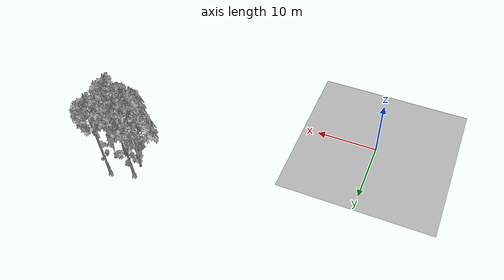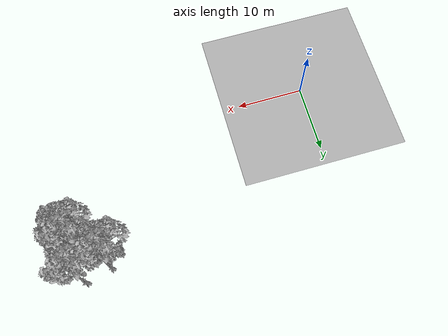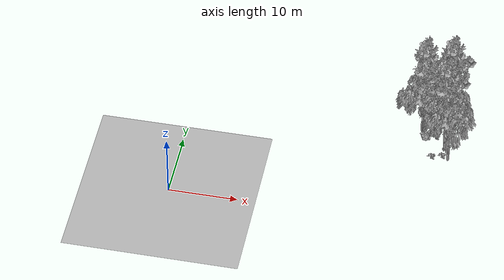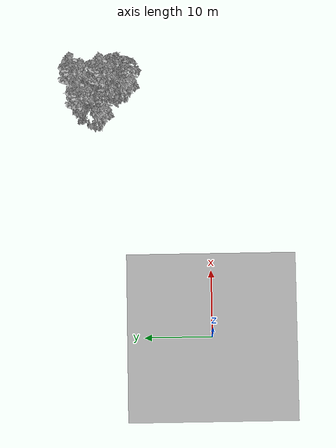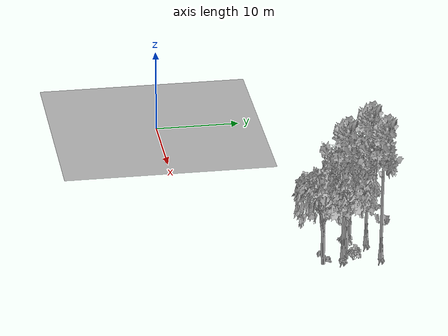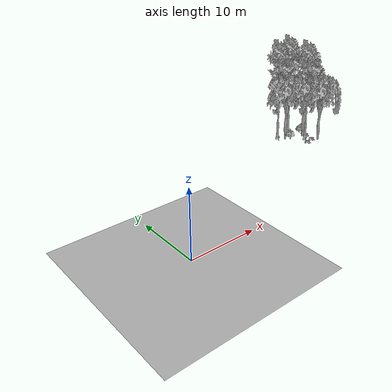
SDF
<sdf version="1.7">
 <world name="default">
  <model name="ground_plane">
   <static>1</static>
   <link name="link">
    <collision name="collision">
     <pose>-50 0 0 0 -0 0</pose>
     <geometry><plane><normal>0 0 1</normal><size>80 80</size></plane></geometry>
     <surface><contact><ode><min_depth>0.01</min_depth><max_vel>0</max_vel></ode></contact></surface>
    </collision>
    <visual name="grass">
     <cast_shadows>0</cast_shadows>
     <geometry>
      <mesh>
       <scale>0.46714285714285714 0.46714285714285714 0.1</scale>
       <uri>file://grass_plane/meshes/grass_plane.dae</uri>
      </mesh>
     </geometry>
    </visual>
   </link>
  </model>
  <model name="Tree 14">
   <static>1</static>
   <pose>38.08258785622533 13.436763141184144 0 1.57079 -0 0</pose>
   <link name="link">
    <collision name="collision">
     <geometry><mesh><scale>3.5 5 3.5</scale><uri>model://tree_2/meshes/tree_2.obj</uri></mesh></geometry>
    </collision>
    <visual name="visual">
     <geometry><mesh><scale>3.5 5 3.5</scale><uri>model://tree_2/meshes/tree_2.obj</uri></mesh></geometry>
    </visual>
   </link>
  </model>
  <model name="Tree 145">
   <static>1</static>
   <pose>33.78740455488774 17.221880997318976 0 1.57079 -0 0</pose>
   <link name="link">
    <collision name="collision">
     <geometry><mesh><scale>3.5 5 3.5</scale><uri>model://tree_2/meshes/tree_2.obj</uri></mesh></geometry>
    </collision>
    <visual name="visual">
     <geometry><mesh><scale>3.5 5 3.5</scale><uri>model://tree_2/meshes/tree_2.obj</uri></mesh></geometry>
    </visual>
   </link>
  </model>
  <model name="Tree 444">
   <static>1</static>
   <pose>37.65890153504124 20.14854058032809 0 1.57079 -0 0</pose>
   <link name="link">
    <collision name="collision">
     <geometry><mesh><scale>3.5 5 3.5</scale><uri>model://tree_9/meshes/tree_9.obj</uri></mesh></geometry>
    </collision>
    <visual name="visual">
     <geometry><mesh><scale>3.5 5 3.5</scale><uri>model://tree_9/meshes/tree_9.obj</uri></mesh></geometry>
    </visual>
   </link>
  </model>
  <model name="Tree 459">
   <static>1</static>
   <pose>37.46842363538593 15.810257560543633 0 1.57079 -0 0</pose>
   <link name="link">
    <collision name="collision">
     <geometry><mesh><scale>3.5 5 3.5</scale><uri>model://tree_9/meshes/tree_9.obj</uri></mesh></geometry>
    </collision>
    <visual name="visual">
     <geometry><mesh><scale>3.5 5 3.5</scale><uri>model://tree_9/meshes/tree_9.obj</uri></mesh></geometry>
    </visual>
   </link>
  </model>
  <model name="Tree 565">
   <static>1</static>
   <pose>37.2042479195089 16.238200924298425 0 1.57079 -0 0</pose>
   <link name="link">
    <collision name="collision">
     <geometry><mesh><scale>3.5 5 3.5</scale><uri>model://tree_2/meshes/tree_2.obj</uri></mesh></geometry>
    </collision>
    <visual name="visual">
     <geometry><mesh><scale>3.5 5 3.5</scale><uri>model://tree_2/meshes/tree_2.obj</uri></mesh></geometry>
    </visual>
   </link>
  </model>
  <model name="Tree 622">
   <static>1</static>
   <pose>33.94679436890809 19.151777174634134 0 1.57079 -0 0</pose>
   <link name="link">
    <collision name="collision">
     <geometry><mesh><scale>3.5 5 3.5</scale><uri>model://tree_9/meshes/tree_9.obj</uri></mesh></geometry>
    </collision>
    <visual name="visual">
     <geometry><mesh><scale>3.5 5 3.5</scale><uri>model://tree_9/meshes/tree_9.obj</uri></mesh></geometry>
    </visual>
   </link>
  </model>
  <model name="Bush 25">
   <static>1</static>
   <pose>37.766197085649935 15.787892764604095 0 1.57079 -0 0</pose>
   <link name="link">
    <collision name="collision">
     <geometry><mesh><scale>2 2 2</scale><uri>model://bush_2/meshes/bush_2.obj</uri></mesh></geometry>
     <surface><contact><collide_without_contact>false</collide_without_contact></contact></surface>
    </collision>
    <visual name="visual">
     <geometry><mesh><scale>2 2 2</scale><uri>model://bush_2/meshes/bush_2.obj</uri></mesh></geometry>
    </visual>
   </link>
  </model>
  <model name="Bush 103">
   <static>1</static>
   <pose>35.889095794291066 17.589025627290482 0 1.57079 -0 0</pose>
   <link name="link">
    <collision name="collision">
     <geometry><mesh><scale>2 2 2</scale><uri>model://bush_2/meshes/bush_2.obj</uri></mesh></geometry>
     <surface><contact><collide_without_contact>false</collide_without_contact></contact></surface>
    </collision>
    <visual name="visual">
     <geometry><mesh><scale>2 2 2</scale><uri>model://bush_2/meshes/bush_2.obj</uri></mesh></geometry>
    </visual>
   </link>
  </model>
  <model name="Bush 232">
   <static>1</static>
   <pose>34.50489003226677 16.555357388513656 0 1.57079 -0 0</pose>
   <link name="link">
    <collision name="collision">
     <geometry><mesh><scale>2 2 2</scale><uri>model://bush_1/meshes/bush_1.obj</uri></mesh></geometry>
     <surface><contact><collide_without_contact>false</collide_without_contact></contact></surface>
    </collision>
    <visual name="visual">
     <geometry><mesh><scale>2 2 2</scale><uri>model://bush_1/meshes/bush_1.obj</uri></mesh></geometry>
    </visual>
   </link>
  </model>
  <model name="Bush 383">
   <static>1</static>
   <pose>37.266901457959634 14.039511371389764 0 1.57079 -0 0</pose>
   <link name="link">
    <collision name="collision">
     <geometry><mesh><scale>2 2 2</scale><uri>model://bush_2/meshes/bush_2.obj</uri></mesh></geometry>
     <surface><contact><collide_without_contact>false</collide_without_contact></contact></surface>
    </collision>
    <visual name="visual">
     <geometry><mesh><scale>2 2 2</scale><uri>model://bush_2/meshes/bush_2.obj</uri></mesh></geometry>
    </visual>
   </link>
  </model>
  <model name="Bush 488">
   <static>1</static>
   <pose>35.77280521128773 13.642659918273033 0 1.57079 -0 0</pose>
   <link name="link">
    <collision name="collision">
     <geometry><mesh><scale>2 2 2</scale><uri>model://bush_2/meshes/bush_2.obj</uri></mesh></geometry>
     <surface><contact><collide_without_contact>false</collide_without_contact></contact></surface>
    </collision>
    <visual name="visual">
     <geometry><mesh><scale>2 2 2</scale><uri>model://bush_2/meshes/bush_2.obj</uri></mesh></geometry>
    </visual>
   </link>
  </model>
  <model name="Bush 632">
   <static>1</static>
   <pose>37.72093893631197 16.969757257529487 0 1.57079 -0 0</pose>
   <link name="link">
    <collision name="collision">
     <geometry><mesh><scale>2 2 2</scale><uri>model://bush_1/meshes/bush_1.obj</uri></mesh></geometry>
     <surface><contact><collide_without_contact>false</collide_without_contact></contact></surface>
    </collision>
    <visual name="visual">
     <geometry><mesh><scale>2 2 2</scale><uri>model://bush_1/meshes/bush_1.obj</uri></mesh></geometry>
    </visual>
   </link>
  </model>
 </world>
</sdf>
